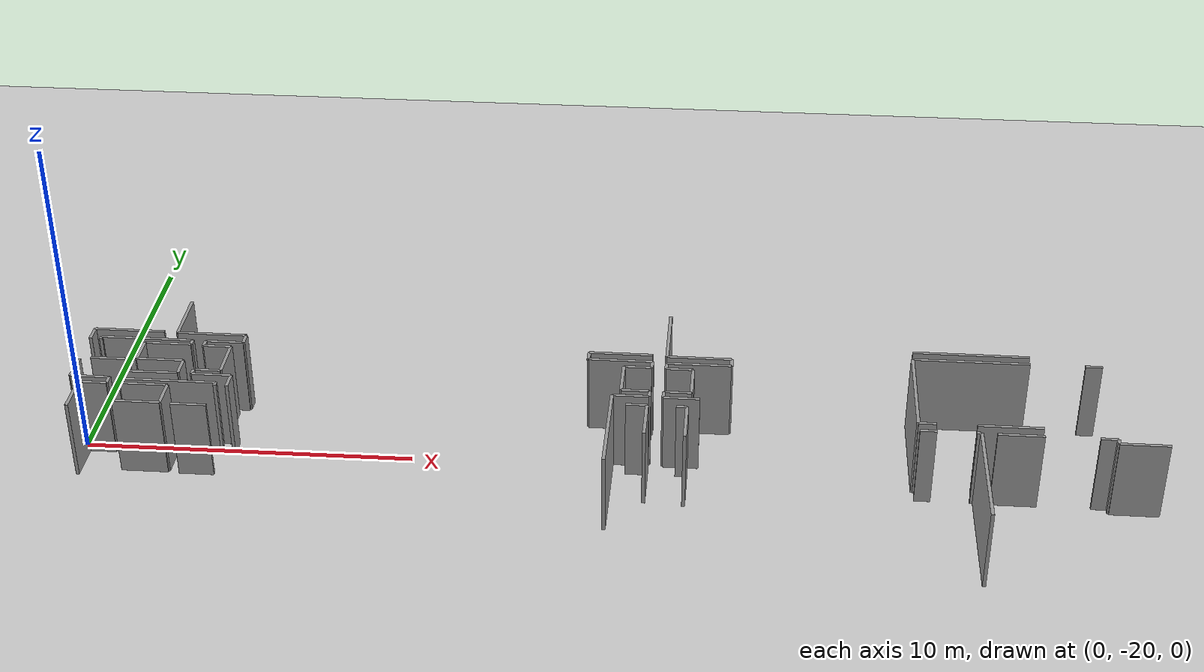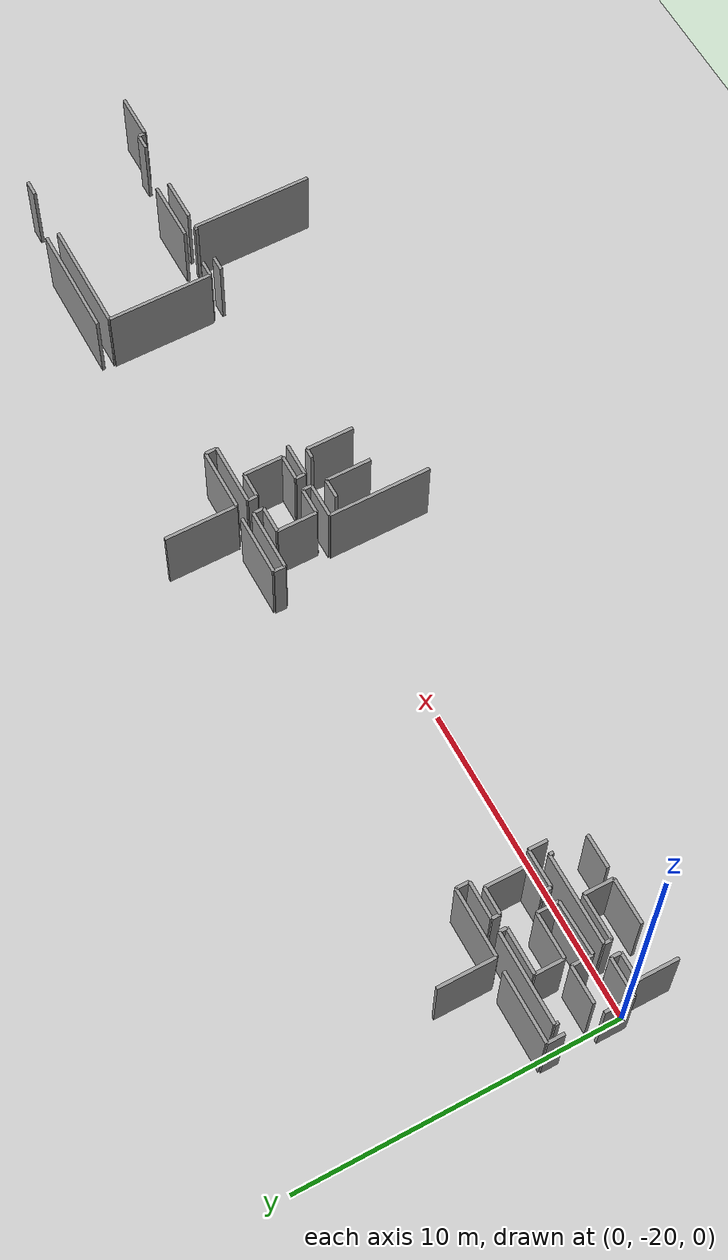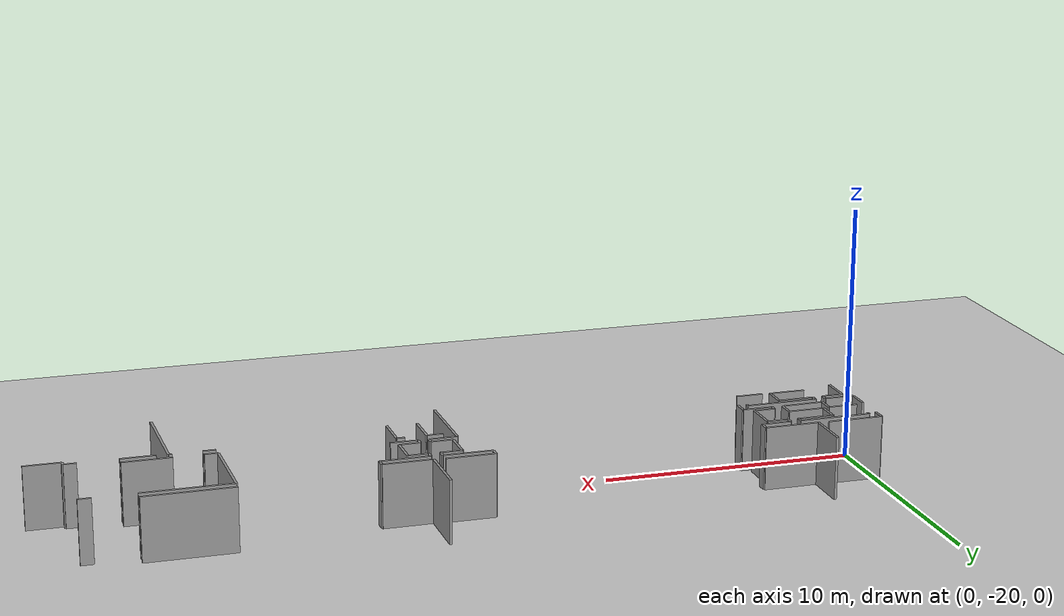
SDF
<sdf version="1.6">
 <world name="default">
  <model name="ground_plane">
   <static>1</static>
   <link name="link">
    <collision name="collision">
     <geometry><plane><normal>0 0 1</normal><size>100 100</size></plane></geometry>
     <surface><friction><ode><mu>100</mu><mu2>50</mu2></ode></friction></surface>
    </collision>
    <visual name="visual">
     <cast_shadows>0</cast_shadows>
     <geometry><plane><normal>0 0 1</normal><size>100 100</size></plane></geometry>
     <material>
      <script><uri>file://media/materials/scripts/gazebo.material</uri><name>Gazebo/Grey</name></script>
     </material>
    </visual>
   </link>
  </model>
  <model name="0510035342_A_40_1_101">
   <static>1</static>
   <link name="Wall_177">
    <collision name="Wall_177_Collision">
     <geometry><box><size>2.18657929493 0.1 2.5</size></box></geometry>
     <pose>1.09328964747 0 1.25 0 0 0</pose>
    </collision>
    <visual name="Wall_177_Visual">
     <pose>1.09328964747 0 1.25 0 0 0</pose>
     <geometry><box><size>2.18657929493 0.1 2.5</size></box></geometry>
     <material>
      <script><uri>file://media/materials/scripts/gazebo.material</uri><name>Gazebo/Grey</name></script>
      <ambient>1 1 1 1</ambient>
     </material>
    </visual>
    <pose>117.678299299 -42.6239459514 0 0 0 3.14159265359</pose>
   </link>
   <link name="Wall_178">
    <collision name="Wall_178_Collision">
     <geometry><box><size>0.537437773037 0.1 2.5</size></box></geometry>
     <pose>0.268718886518 0 1.25 0 0 0</pose>
    </collision>
    <visual name="Wall_178_Visual">
     <pose>0.268718886518 0 1.25 0 0 0</pose>
     <geometry><box><size>0.537437773037 0.1 2.5</size></box></geometry>
     <material>
      <script><uri>file://media/materials/scripts/gazebo.material</uri><name>Gazebo/Grey</name></script>
      <ambient>1 1 1 1</ambient>
     </material>
    </visual>
    <pose>115.491720004 -42.6239459514 0 0 0 -1.57079632679</pose>
   </link>
   <link name="Wall_179">
    <collision name="Wall_179_Collision">
     <geometry><box><size>0.915117342274 0.1 2.5</size></box></geometry>
     <pose>0.457558671137 0 1.25 0 0 0</pose>
    </collision>
    <visual name="Wall_179_Visual">
     <pose>0.457558671137 0 1.25 0 0 0</pose>
     <geometry><box><size>0.915117342274 0.1 2.5</size></box></geometry>
     <material>
      <script><uri>file://media/materials/scripts/gazebo.material</uri><name>Gazebo/Grey</name></script>
      <ambient>1 1 1 1</ambient>
     </material>
    </visual>
    <pose>115.491720004 -44.3368383623 0 0 0 -1.57079632679</pose>
   </link>
   <link name="Wall_180">
    <collision name="Wall_180_Collision">
     <geometry><box><size>1.18586812964 0.1 2.5</size></box></geometry>
     <pose>0.592934064818 0 1.25 0 0 0</pose>
    </collision>
    <visual name="Wall_180_Visual">
     <pose>0.592934064818 0 1.25 0 0 0</pose>
     <geometry><box><size>1.18586812964 0.1 2.5</size></box></geometry>
     <material>
      <script><uri>file://media/materials/scripts/gazebo.material</uri><name>Gazebo/Grey</name></script>
      <ambient>1 1 1 1</ambient>
     </material>
    </visual>
    <pose>115.491720004 -45.2519557046 0 0 0 0.0</pose>
   </link>
   <link name="Wall_181">
    <collision name="Wall_181_Collision">
     <geometry><box><size>0.303769176064 0.1 2.5</size></box></geometry>
     <pose>0.151884588032 0 1.25 0 0 0</pose>
    </collision>
    <visual name="Wall_181_Visual">
     <pose>0.151884588032 0 1.25 0 0 0</pose>
     <geometry><box><size>0.303769176064 0.1 2.5</size></box></geometry>
     <material>
      <script><uri>file://media/materials/scripts/gazebo.material</uri><name>Gazebo/Grey</name></script>
      <ambient>1 1 1 1</ambient>
     </material>
    </visual>
    <pose>116.677588134 -45.2519557046 0 0 0 -1.57079632679</pose>
   </link>
   <link name="Wall_182">
    <collision name="Wall_182_Collision">
     <geometry><box><size>0.845524738393 0.1 2.5</size></box></geometry>
     <pose>0.422762369196 0 1.25 0 0 0</pose>
    </collision>
    <visual name="Wall_182_Visual">
     <pose>0.422762369196 0 1.25 0 0 0</pose>
     <geometry><box><size>0.845524738393 0.1 2.5</size></box></geometry>
     <material>
      <script><uri>file://media/materials/scripts/gazebo.material</uri><name>Gazebo/Grey</name></script>
      <ambient>1 1 1 1</ambient>
     </material>
    </visual>
    <pose>116.677588134 -45.5557248806 0 0 0 3.14159265359</pose>
   </link>
   <link name="Wall_183">
    <collision name="Wall_183_Collision">
     <geometry><box><size>1.25165091944 0.1 2.5</size></box></geometry>
     <pose>0.625825459718 0 1.25 0 0 0</pose>
    </collision>
    <visual name="Wall_183_Visual">
     <pose>0.625825459718 0 1.25 0 0 0</pose>
     <geometry><box><size>1.25165091944 0.1 2.5</size></box></geometry>
     <material>
      <script><uri>file://media/materials/scripts/gazebo.material</uri><name>Gazebo/Grey</name></script>
      <ambient>1 1 1 1</ambient>
     </material>
    </visual>
    <pose>115.832063395 -45.5557248806 0 0 0 -1.57079632679</pose>
   </link>
   <link name="Wall_192">
    <collision name="Wall_192_Collision">
     <geometry><box><size>0.581377628772 0.1 2.5</size></box></geometry>
     <pose>0.290688814386 0 1.25 0 0 0</pose>
    </collision>
    <visual name="Wall_192_Visual">
     <pose>0.290688814386 0 1.25 0 0 0</pose>
     <geometry><box><size>0.581377628772 0.1 2.5</size></box></geometry>
     <material>
      <script><uri>file://media/materials/scripts/gazebo.material</uri><name>Gazebo/Grey</name></script>
      <ambient>1 1 1 1</ambient>
     </material>
    </visual>
    <pose>120.27786244 -45.4635273799 0 0 0 1.57079632679</pose>
   </link>
   <link name="Wall_193">
    <collision name="Wall_193_Collision">
     <geometry><box><size>1.19018591893 0.1 2.5</size></box></geometry>
     <pose>0.595092959464 0 1.25 0 0 0</pose>
    </collision>
    <visual name="Wall_193_Visual">
     <pose>0.595092959464 0 1.25 0 0 0</pose>
     <geometry><box><size>1.19018591893 0.1 2.5</size></box></geometry>
     <material>
      <script><uri>file://media/materials/scripts/gazebo.material</uri><name>Gazebo/Grey</name></script>
      <ambient>1 1 1 1</ambient>
     </material>
    </visual>
    <pose>120.27786244 -44.8821497511 0 0 0 3.14159265359</pose>
   </link>
   <link name="Wall_194">
    <collision name="Wall_194_Collision">
     <geometry><box><size>0.232398658945 0.1 2.5</size></box></geometry>
     <pose>0.116199329473 0 1.25 0 0 0</pose>
    </collision>
    <visual name="Wall_194_Visual">
     <pose>0.116199329473 0 1.25 0 0 0</pose>
     <geometry><box><size>0.232398658945 0.1 2.5</size></box></geometry>
     <material>
      <script><uri>file://media/materials/scripts/gazebo.material</uri><name>Gazebo/Grey</name></script>
      <ambient>1 1 1 1</ambient>
     </material>
    </visual>
    <pose>119.087676521 -44.8821497511 0 0 0 1.57079632679</pose>
   </link>
   <link name="Wall_195">
    <collision name="Wall_195_Collision">
     <geometry><box><size>0.82190389109 0.1 2.5</size></box></geometry>
     <pose>0.410951945545 0 1.25 0 0 0</pose>
    </collision>
    <visual name="Wall_195_Visual">
     <pose>0.410951945545 0 1.25 0 0 0</pose>
     <geometry><box><size>0.82190389109 0.1 2.5</size></box></geometry>
     <material>
      <script><uri>file://media/materials/scripts/gazebo.material</uri><name>Gazebo/Grey</name></script>
      <ambient>1 1 1 1</ambient>
     </material>
    </visual>
    <pose>119.087676521 -44.6497510921 0 0 0 0.0</pose>
   </link>
   <link name="Wall_196">
    <collision name="Wall_196_Collision">
     <geometry><box><size>1.32835517627 0.1 2.5</size></box></geometry>
     <pose>0.664177588134 0 1.25 0 0 0</pose>
    </collision>
    <visual name="Wall_196_Visual">
     <pose>0.664177588134 0 1.25 0 0 0</pose>
     <geometry><box><size>1.32835517627 0.1 2.5</size></box></geometry>
     <material>
      <script><uri>file://media/materials/scripts/gazebo.material</uri><name>Gazebo/Grey</name></script>
      <ambient>1 1 1 1</ambient>
     </material>
    </visual>
    <pose>119.909580412 -44.6497510921 0 0 0 1.57079632679</pose>
   </link>
   <link name="Wall_197">
    <collision name="Wall_197_Collision">
     <geometry><box><size>0.839683023468 0.1 2.5</size></box></geometry>
     <pose>0.419841511734 0 1.25 0 0 0</pose>
    </collision>
    <visual name="Wall_197_Visual">
     <pose>0.419841511734 0 1.25 0 0 0</pose>
     <geometry><box><size>0.839683023468 0.1 2.5</size></box></geometry>
     <material>
      <script><uri>file://media/materials/scripts/gazebo.material</uri><name>Gazebo/Grey</name></script>
      <ambient>1 1 1 1</ambient>
     </material>
    </visual>
    <pose>119.909580412 -43.3213959159 0 0 0 3.14159265359</pose>
   </link>
   <link name="Wall_198">
    <collision name="Wall_198_Collision">
     <geometry><box><size>0.259321345118 0.1 2.5</size></box></geometry>
     <pose>0.129660672559 0 1.25 0 0 0</pose>
    </collision>
    <visual name="Wall_198_Visual">
     <pose>0.129660672559 0 1.25 0 0 0</pose>
     <geometry><box><size>0.259321345118 0.1 2.5</size></box></geometry>
     <material>
      <script><uri>file://media/materials/scripts/gazebo.material</uri><name>Gazebo/Grey</name></script>
      <ambient>1 1 1 1</ambient>
     </material>
    </visual>
    <pose>119.069897389 -43.3213959159 0 0 0 1.57079632679</pose>
   </link>
   <link name="Wall_199">
    <collision name="Wall_199_Collision">
     <geometry><box><size>1.16961292289 0.1 2.5</size></box></geometry>
     <pose>0.584806461445 0 1.25 0 0 0</pose>
    </collision>
    <visual name="Wall_199_Visual">
     <pose>0.584806461445 0 1.25 0 0 0</pose>
     <geometry><box><size>1.16961292289 0.1 2.5</size></box></geometry>
     <material>
      <script><uri>file://media/materials/scripts/gazebo.material</uri><name>Gazebo/Grey</name></script>
      <ambient>1 1 1 1</ambient>
     </material>
    </visual>
    <pose>119.069897389 -43.0620745708 0 0 0 0.0</pose>
   </link>
   <link name="Wall_200">
    <collision name="Wall_200_Collision">
     <geometry><box><size>0.411459920756 0.1 2.5</size></box></geometry>
     <pose>0.205729960378 0 1.25 0 0 0</pose>
    </collision>
    <visual name="Wall_200_Visual">
     <pose>0.205729960378 0 1.25 0 0 0</pose>
     <geometry><box><size>0.411459920756 0.1 2.5</size></box></geometry>
     <material>
      <script><uri>file://media/materials/scripts/gazebo.material</uri><name>Gazebo/Grey</name></script>
      <ambient>1 1 1 1</ambient>
     </material>
    </visual>
    <pose>120.239510312 -43.0620745708 0 0 0 1.57079632679</pose>
   </link>
   <link name="Wall_201">
    <collision name="Wall_201_Collision">
     <geometry><box><size>2.14416336483 0.1 2.5</size></box></geometry>
     <pose>1.07208168241 0 1.25 0 0 0</pose>
    </collision>
    <visual name="Wall_201_Visual">
     <pose>1.07208168241 0 1.25 0 0 0</pose>
     <geometry><box><size>2.14416336483 0.1 2.5</size></box></geometry>
     <material>
      <script><uri>file://media/materials/scripts/gazebo.material</uri><name>Gazebo/Grey</name></script>
      <ambient>1 1 1 1</ambient>
     </material>
    </visual>
    <pose>120.239510312 -42.65061465 0 0 0 3.14159265359</pose>
   </link>
   <link name="Wall_202">
    <collision name="Wall_202_Collision">
     <geometry><box><size>1.79772427106 0.1 2.5</size></box></geometry>
     <pose>0.898862135528 0 1.25 0 0 0</pose>
    </collision>
    <visual name="Wall_202_Visual">
     <pose>0.898862135528 0 1.25 0 0 0</pose>
     <geometry><box><size>1.79772427106 0.1 2.5</size></box></geometry>
     <material>
      <script><uri>file://media/materials/scripts/gazebo.material</uri><name>Gazebo/Grey</name></script>
      <ambient>1 1 1 1</ambient>
     </material>
    </visual>
    <pose>118.095346947 -42.65061465 0 0 0 1.57079632679</pose>
   </link>
   <link name="Wall_211">
    <collision name="Wall_211_Collision">
     <geometry><box><size>1.9315757391 0.1 2.5</size></box></geometry>
     <pose>0.965787869552 0 1.25 0 0 0</pose>
    </collision>
    <visual name="Wall_211_Visual">
     <pose>0.965787869552 0 1.25 0 0 0</pose>
     <geometry><box><size>1.9315757391 0.1 2.5</size></box></geometry>
     <material>
      <script><uri>file://media/materials/scripts/gazebo.material</uri><name>Gazebo/Grey</name></script>
      <ambient>1 1 1 1</ambient>
     </material>
    </visual>
    <pose>132.808086965 -42.8118967794 0 0 0 3.14159265359</pose>
   </link>
   <link name="Wall_212">
    <collision name="Wall_212_Collision">
     <geometry><box><size>0.362948288124 0.1 2.5</size></box></geometry>
     <pose>0.181474144062 0 1.25 0 0 0</pose>
    </collision>
    <visual name="Wall_212_Visual">
     <pose>0.181474144062 0 1.25 0 0 0</pose>
     <geometry><box><size>0.362948288124 0.1 2.5</size></box></geometry>
     <material>
      <script><uri>file://media/materials/scripts/gazebo.material</uri><name>Gazebo/Grey</name></script>
      <ambient>1 1 1 1</ambient>
     </material>
    </visual>
    <pose>130.876511226 -42.8118967794 0 0 0 -1.57079632679</pose>
   </link>
   <link name="Wall_213">
    <collision name="Wall_213_Collision">
     <geometry><box><size>1.9358935284 0.1 2.5</size></box></geometry>
     <pose>0.967946764198 0 1.25 0 0 0</pose>
    </collision>
    <visual name="Wall_213_Visual">
     <pose>0.967946764198 0 1.25 0 0 0</pose>
     <geometry><box><size>1.9358935284 0.1 2.5</size></box></geometry>
     <material>
      <script><uri>file://media/materials/scripts/gazebo.material</uri><name>Gazebo/Grey</name></script>
      <ambient>1 1 1 1</ambient>
     </material>
    </visual>
    <pose>130.876511226 -43.1748450676 0 0 0 0.0</pose>
   </link>
   <link name="Wall_214">
    <collision name="Wall_214_Collision">
     <geometry><box><size>0.329167936605 0.1 2.5</size></box></geometry>
     <pose>0.164583968302 0 1.25 0 0 0</pose>
    </collision>
    <visual name="Wall_214_Visual">
     <pose>0.164583968302 0 1.25 0 0 0</pose>
     <geometry><box><size>0.329167936605 0.1 2.5</size></box></geometry>
     <material>
      <script><uri>file://media/materials/scripts/gazebo.material</uri><name>Gazebo/Grey</name></script>
      <ambient>1 1 1 1</ambient>
     </material>
    </visual>
    <pose>132.812404755 -43.1748450676 0 0 0 -1.57079632679</pose>
   </link>
   <link name="Wall_215">
    <collision name="Wall_215_Collision">
     <geometry><box><size>0.838667073047 0.1 2.5</size></box></geometry>
     <pose>0.419333536523 0 1.25 0 0 0</pose>
    </collision>
    <visual name="Wall_215_Visual">
     <pose>0.419333536523 0 1.25 0 0 0</pose>
     <geometry><box><size>0.838667073047 0.1 2.5</size></box></geometry>
     <material>
      <script><uri>file://media/materials/scripts/gazebo.material</uri><name>Gazebo/Grey</name></script>
      <ambient>1 1 1 1</ambient>
     </material>
    </visual>
    <pose>132.812404755 -43.5040130042 0 0 0 3.14159265359</pose>
   </link>
   <link name="Wall_216">
    <collision name="Wall_216_Collision">
     <geometry><box><size>1.26206441126 0.1 2.5</size></box></geometry>
     <pose>0.631032205628 0 1.25 0 0 0</pose>
    </collision>
    <visual name="Wall_216_Visual">
     <pose>0.631032205628 0 1.25 0 0 0</pose>
     <geometry><box><size>1.26206441126 0.1 2.5</size></box></geometry>
     <material>
      <script><uri>file://media/materials/scripts/gazebo.material</uri><name>Gazebo/Grey</name></script>
      <ambient>1 1 1 1</ambient>
     </material>
    </visual>
    <pose>131.973737682 -43.5040130042 0 0 0 -1.57079632679</pose>
   </link>
   <link name="Wall_217">
    <collision name="Wall_217_Collision">
     <geometry><box><size>0.85009651529 0.1 2.5</size></box></geometry>
     <pose>0.425048257645 0 1.25 0 0 0</pose>
    </collision>
    <visual name="Wall_217_Visual">
     <pose>0.425048257645 0 1.25 0 0 0</pose>
     <geometry><box><size>0.85009651529 0.1 2.5</size></box></geometry>
     <material>
      <script><uri>file://media/materials/scripts/gazebo.material</uri><name>Gazebo/Grey</name></script>
      <ambient>1 1 1 1</ambient>
     </material>
    </visual>
    <pose>131.973737682 -44.7660774154 0 0 0 0.0</pose>
   </link>
   <link name="Wall_218">
    <collision name="Wall_218_Collision">
     <geometry><box><size>0.288783907345 0.1 2.5</size></box></geometry>
     <pose>0.144391953673 0 1.25 0 0 0</pose>
    </collision>
    <visual name="Wall_218_Visual">
     <pose>0.144391953673 0 1.25 0 0 0</pose>
     <geometry><box><size>0.288783907345 0.1 2.5</size></box></geometry>
     <material>
      <script><uri>file://media/materials/scripts/gazebo.material</uri><name>Gazebo/Grey</name></script>
      <ambient>1 1 1 1</ambient>
     </material>
    </visual>
    <pose>132.823834197 -44.7660774154 0 0 0 -1.57079632679</pose>
   </link>
   <link name="Wall_219">
    <collision name="Wall_219_Collision">
     <geometry><box><size>1.09748044295 0.1 2.5</size></box></geometry>
     <pose>0.548740221477 0 1.25 0 0 0</pose>
    </collision>
    <visual name="Wall_219_Visual">
     <pose>0.548740221477 0 1.25 0 0 0</pose>
     <geometry><box><size>1.09748044295 0.1 2.5</size></box></geometry>
     <material>
      <script><uri>file://media/materials/scripts/gazebo.material</uri><name>Gazebo/Grey</name></script>
      <ambient>1 1 1 1</ambient>
     </material>
    </visual>
    <pose>132.823834197 -45.0548613228 0 0 0 3.14159265359</pose>
   </link>
   <link name="Wall_220">
    <collision name="Wall_220_Collision">
     <geometry><box><size>3.24596159707 0.1 2.5</size></box></geometry>
     <pose>1.62298079854 0 1.25 0 0 0</pose>
    </collision>
    <visual name="Wall_220_Visual">
     <pose>1.62298079854 0 1.25 0 0 0</pose>
     <geometry><box><size>3.24596159707 0.1 2.5</size></box></geometry>
     <material>
      <script><uri>file://media/materials/scripts/gazebo.material</uri><name>Gazebo/Grey</name></script>
      <ambient>1 1 1 1</ambient>
     </material>
    </visual>
    <pose>131.726353754 -45.0548613228 0 0 0 -1.57079632679</pose>
   </link>
   <link name="Wall_225">
    <collision name="Wall_225_Collision">
     <geometry><box><size>1.07589149649 0.1 2.5</size></box></geometry>
     <pose>0.537945748247 0 1.25 0 0 0</pose>
    </collision>
    <visual name="Wall_225_Visual">
     <pose>0.537945748247 0 1.25 0 0 0</pose>
     <geometry><box><size>1.07589149649 0.1 2.5</size></box></geometry>
     <material>
      <script><uri>file://media/materials/scripts/gazebo.material</uri><name>Gazebo/Grey</name></script>
      <ambient>1 1 1 1</ambient>
     </material>
    </visual>
    <pose>134.323377019 -45.0723864675 0 0 0 3.14159265359</pose>
   </link>
   <link name="Wall_226">
    <collision name="Wall_226_Collision">
     <geometry><box><size>0.296403535507 0.1 2.5</size></box></geometry>
     <pose>0.148201767754 0 1.25 0 0 0</pose>
    </collision>
    <visual name="Wall_226_Visual">
     <pose>0.148201767754 0 1.25 0 0 0</pose>
     <geometry><box><size>0.296403535507 0.1 2.5</size></box></geometry>
     <material>
      <script><uri>file://media/materials/scripts/gazebo.material</uri><name>Gazebo/Grey</name></script>
      <ambient>1 1 1 1</ambient>
     </material>
    </visual>
    <pose>133.247485523 -45.0723864675 0 0 0 1.57079632679</pose>
   </link>
   <link name="Wall_227">
    <collision name="Wall_227_Collision">
     <geometry><box><size>0.81250634969 0.1 2.5</size></box></geometry>
     <pose>0.406253174845 0 1.25 0 0 0</pose>
    </collision>
    <visual name="Wall_227_Visual">
     <pose>0.406253174845 0 1.25 0 0 0</pose>
     <geometry><box><size>0.81250634969 0.1 2.5</size></box></geometry>
     <material>
      <script><uri>file://media/materials/scripts/gazebo.material</uri><name>Gazebo/Grey</name></script>
      <ambient>1 1 1 1</ambient>
     </material>
    </visual>
    <pose>133.247485523 -44.775982932 0 0 0 0.0</pose>
   </link>
   <link name="Wall_228">
    <collision name="Wall_228_Collision">
     <geometry><box><size>1.24784110535 0.1 2.5</size></box></geometry>
     <pose>0.623920552677 0 1.25 0 0 0</pose>
    </collision>
    <visual name="Wall_228_Visual">
     <pose>0.623920552677 0 1.25 0 0 0</pose>
     <geometry><box><size>1.24784110535 0.1 2.5</size></box></geometry>
     <material>
      <script><uri>file://media/materials/scripts/gazebo.material</uri><name>Gazebo/Grey</name></script>
      <ambient>1 1 1 1</ambient>
     </material>
    </visual>
    <pose>134.059991872 -44.775982932 0 0 0 1.57079632679</pose>
   </link>
   <link name="Wall_229">
    <collision name="Wall_229_Collision">
     <geometry><box><size>0.80590267195 0.1 2.5</size></box></geometry>
     <pose>0.402951335975 0 1.25 0 0 0</pose>
    </collision>
    <visual name="Wall_229_Visual">
     <pose>0.402951335975 0 1.25 0 0 0</pose>
     <geometry><box><size>0.80590267195 0.1 2.5</size></box></geometry>
     <material>
      <script><uri>file://media/materials/scripts/gazebo.material</uri><name>Gazebo/Grey</name></script>
      <ambient>1 1 1 1</ambient>
     </material>
    </visual>
    <pose>134.059991872 -43.5281418267 0 0 0 3.14159265359</pose>
   </link>
   <link name="Wall_230">
    <collision name="Wall_230_Collision">
     <geometry><box><size>0.296149547902 0.1 2.5</size></box></geometry>
     <pose>0.148074773951 0 1.25 0 0 0</pose>
    </collision>
    <visual name="Wall_230_Visual">
     <pose>0.148074773951 0 1.25 0 0 0</pose>
     <geometry><box><size>0.296149547902 0.1 2.5</size></box></geometry>
     <material>
      <script><uri>file://media/materials/scripts/gazebo.material</uri><name>Gazebo/Grey</name></script>
      <ambient>1 1 1 1</ambient>
     </material>
    </visual>
    <pose>133.2540892 -43.5281418267 0 0 0 1.57079632679</pose>
   </link>
   <link name="Wall_231">
    <collision name="Wall_231_Collision">
     <geometry><box><size>1.94783094585 0.1 2.5</size></box></geometry>
     <pose>0.973915472925 0 1.25 0 0 0</pose>
    </collision>
    <visual name="Wall_231_Visual">
     <pose>0.973915472925 0 1.25 0 0 0</pose>
     <geometry><box><size>1.94783094585 0.1 2.5</size></box></geometry>
     <material>
      <script><uri>file://media/materials/scripts/gazebo.material</uri><name>Gazebo/Grey</name></script>
      <ambient>1 1 1 1</ambient>
     </material>
    </visual>
    <pose>133.2540892 -43.2319922788 0 0 0 0.0</pose>
   </link>
   <link name="Wall_232">
    <collision name="Wall_232_Collision">
     <geometry><box><size>0.362694300518 0.1 2.5</size></box></geometry>
     <pose>0.181347150259 0 1.25 0 0 0</pose>
    </collision>
    <visual name="Wall_232_Visual">
     <pose>0.181347150259 0 1.25 0 0 0</pose>
     <geometry><box><size>0.362694300518 0.1 2.5</size></box></geometry>
     <material>
      <script><uri>file://media/materials/scripts/gazebo.material</uri><name>Gazebo/Grey</name></script>
      <ambient>1 1 1 1</ambient>
     </material>
    </visual>
    <pose>135.201920146 -43.2319922788 0 0 0 1.57079632679</pose>
   </link>
   <link name="Wall_233">
    <collision name="Wall_233_Collision">
     <geometry><box><size>1.95748247486 0.1 2.5</size></box></geometry>
     <pose>0.978741237428 0 1.25 0 0 0</pose>
    </collision>
    <visual name="Wall_233_Visual">
     <pose>0.978741237428 0 1.25 0 0 0</pose>
     <geometry><box><size>1.95748247486 0.1 2.5</size></box></geometry>
     <material>
      <script><uri>file://media/materials/scripts/gazebo.material</uri><name>Gazebo/Grey</name></script>
      <ambient>1 1 1 1</ambient>
     </material>
    </visual>
    <pose>135.201920146 -42.8692979783 0 0 0 3.14159265359</pose>
   </link>
   <link name="Wall_234">
    <collision name="Wall_234_Collision">
     <geometry><box><size>2.2836025602 0.1 2.5</size></box></geometry>
     <pose>1.1418012801 0 1.25 0 0 0</pose>
    </collision>
    <visual name="Wall_234_Visual">
     <pose>1.1418012801 0 1.25 0 0 0</pose>
     <geometry><box><size>2.2836025602 0.1 2.5</size></box></geometry>
     <material>
      <script><uri>file://media/materials/scripts/gazebo.material</uri><name>Gazebo/Grey</name></script>
      <ambient>1 1 1 1</ambient>
     </material>
    </visual>
    <pose>133.244437671 -42.8692979783 0 0 0 1.57079632679</pose>
   </link>
   <link name="Wall_240">
    <collision name="Wall_240_Collision">
     <geometry><box><size>0.65884384842 0.1 2.5</size></box></geometry>
     <pose>0.32942192421 0 1.25 0 0 0</pose>
    </collision>
    <visual name="Wall_240_Visual">
     <pose>0.32942192421 0 1.25 0 0 0</pose>
     <geometry><box><size>0.65884384842 0.1 2.5</size></box></geometry>
     <material>
      <script><uri>file://media/materials/scripts/gazebo.material</uri><name>Gazebo/Grey</name></script>
      <ambient>1 1 1 1</ambient>
     </material>
    </visual>
    <pose>116.974245657 -44.8935791933 0 0 0 1.57079632679</pose>
   </link>
   <link name="Wall_241">
    <collision name="Wall_241_Collision">
     <geometry><box><size>1.15538961699 0.1 2.5</size></box></geometry>
     <pose>0.577694808493 0 1.25 0 0 0</pose>
    </collision>
    <visual name="Wall_241_Visual">
     <pose>0.577694808493 0 1.25 0 0 0</pose>
     <geometry><box><size>1.15538961699 0.1 2.5</size></box></geometry>
     <material>
      <script><uri>file://media/materials/scripts/gazebo.material</uri><name>Gazebo/Grey</name></script>
      <ambient>1 1 1 1</ambient>
     </material>
    </visual>
    <pose>116.974245657 -44.2347353449 0 0 0 3.14159265359</pose>
   </link>
   <link name="Wall_242">
    <collision name="Wall_242_Collision">
     <geometry><box><size>0.121660062989 0.1 2.5</size></box></geometry>
     <pose>0.0608300314945 0 1.25 0 0 0</pose>
    </collision>
    <visual name="Wall_242_Visual">
     <pose>0.0608300314945 0 1.25 0 0 0</pose>
     <geometry><box><size>0.121660062989 0.1 2.5</size></box></geometry>
     <material>
      <script><uri>file://media/materials/scripts/gazebo.material</uri><name>Gazebo/Grey</name></script>
      <ambient>1 1 1 1</ambient>
     </material>
    </visual>
    <pose>115.81885604 -43.1738291171 0 0 0 1.57079632679</pose>
   </link>
   <link name="Wall_243">
    <collision name="Wall_243_Collision">
     <geometry><box><size>2.84618510617 0.1 2.5</size></box></geometry>
     <pose>1.42309255308 0 1.25 0 0 0</pose>
    </collision>
    <visual name="Wall_243_Visual">
     <pose>1.42309255308 0 1.25 0 0 0</pose>
     <geometry><box><size>2.84618510617 0.1 2.5</size></box></geometry>
     <material>
      <script><uri>file://media/materials/scripts/gazebo.material</uri><name>Gazebo/Grey</name></script>
      <ambient>1 1 1 1</ambient>
     </material>
    </visual>
    <pose>115.81885604 -43.0521690542 0 0 0 0.0</pose>
   </link>
   <link name="Wall_244">
    <collision name="Wall_244_Collision">
     <geometry><box><size>0.230366758102 0.1 2.5</size></box></geometry>
     <pose>0.115183379051 0 1.25 0 0 0</pose>
    </collision>
    <visual name="Wall_244_Visual">
     <pose>0.115183379051 0 1.25 0 0 0</pose>
     <geometry><box><size>0.230366758102 0.1 2.5</size></box></geometry>
     <material>
      <script><uri>file://media/materials/scripts/gazebo.material</uri><name>Gazebo/Grey</name></script>
      <ambient>1 1 1 1</ambient>
     </material>
    </visual>
    <pose>118.665041146 -43.0521690542 0 0 0 -1.57079632679</pose>
   </link>
   <link name="Wall_245">
    <collision name="Wall_245_Collision">
     <geometry><box><size>1.43833180941 0.1 2.5</size></box></geometry>
     <pose>0.719165904704 0 1.25 0 0 0</pose>
    </collision>
    <visual name="Wall_245_Visual">
     <pose>0.719165904704 0 1.25 0 0 0</pose>
     <geometry><box><size>1.43833180941 0.1 2.5</size></box></geometry>
     <material>
      <script><uri>file://media/materials/scripts/gazebo.material</uri><name>Gazebo/Grey</name></script>
      <ambient>1 1 1 1</ambient>
     </material>
    </visual>
    <pose>118.665041146 -43.2825358123 0 0 0 3.14159265359</pose>
   </link>
   <link name="Wall_246">
    <collision name="Wall_246_Collision">
     <geometry><box><size>0.900640048766 0.1 2.5</size></box></geometry>
     <pose>0.450320024383 0 1.25 0 0 0</pose>
    </collision>
    <visual name="Wall_246_Visual">
     <pose>0.450320024383 0 1.25 0 0 0</pose>
     <geometry><box><size>0.900640048766 0.1 2.5</size></box></geometry>
     <material>
      <script><uri>file://media/materials/scripts/gazebo.material</uri><name>Gazebo/Grey</name></script>
      <ambient>1 1 1 1</ambient>
     </material>
    </visual>
    <pose>117.226709337 -43.2825358123 0 0 0 -1.57079632679</pose>
   </link>
   <link name="Wall_247">
    <collision name="Wall_247_Collision">
     <geometry><box><size>1.42741034238 0.1 2.5</size></box></geometry>
     <pose>0.713705171188 0 1.25 0 0 0</pose>
    </collision>
    <visual name="Wall_247_Visual">
     <pose>0.713705171188 0 1.25 0 0 0</pose>
     <geometry><box><size>1.42741034238 0.1 2.5</size></box></geometry>
     <material>
      <script><uri>file://media/materials/scripts/gazebo.material</uri><name>Gazebo/Grey</name></script>
      <ambient>1 1 1 1</ambient>
     </material>
    </visual>
    <pose>117.226709337 -44.183175861 0 0 0 0.0</pose>
   </link>
   <link name="Wall_248">
    <collision name="Wall_248_Collision">
     <geometry><box><size>0.674083104744 0.1 2.5</size></box></geometry>
     <pose>0.337041552372 0 1.25 0 0 0</pose>
    </collision>
    <visual name="Wall_248_Visual">
     <pose>0.337041552372 0 1.25 0 0 0</pose>
     <geometry><box><size>0.674083104744 0.1 2.5</size></box></geometry>
     <material>
      <script><uri>file://media/materials/scripts/gazebo.material</uri><name>Gazebo/Grey</name></script>
      <ambient>1 1 1 1</ambient>
     </material>
    </visual>
    <pose>118.654119679 -44.183175861 0 0 0 -1.57079632679</pose>
   </link>
   <link name="Wall_249">
    <collision name="Wall_249_Collision">
     <geometry><box><size>1.68026661254 0.1 2.5</size></box></geometry>
     <pose>0.84013330627 0 1.25 0 0 0</pose>
    </collision>
    <visual name="Wall_249_Visual">
     <pose>0.84013330627 0 1.25 0 0 0</pose>
     <geometry><box><size>1.68026661254 0.1 2.5</size></box></geometry>
     <material>
      <script><uri>file://media/materials/scripts/gazebo.material</uri><name>Gazebo/Grey</name></script>
      <ambient>1 1 1 1</ambient>
     </material>
    </visual>
    <pose>118.654119679 -44.8572589658 0 0 0 -3.11997521724</pose>
   </link>
   <link name="Wall_251">
    <collision name="Wall_251_Collision">
     <geometry><box><size>1.42715635477 0.1 2.5</size></box></geometry>
     <pose>0.713578177385 0 1.25 0 0 0</pose>
    </collision>
    <visual name="Wall_251_Visual">
     <pose>0.713578177385 0 1.25 0 0 0</pose>
     <geometry><box><size>1.42715635477 0.1 2.5</size></box></geometry>
     <material>
      <script><uri>file://media/materials/scripts/gazebo.material</uri><name>Gazebo/Grey</name></script>
      <ambient>1 1 1 1</ambient>
     </material>
    </visual>
    <pose>117.086762166 -46.455348979 0 0 0 0.0</pose>
   </link>
   <link name="Wall_252">
    <collision name="Wall_252_Collision">
     <geometry><box><size>0.924006908463 0.1 2.5</size></box></geometry>
     <pose>0.462003454231 0 1.25 0 0 0</pose>
    </collision>
    <visual name="Wall_252_Visual">
     <pose>0.462003454231 0 1.25 0 0 0</pose>
     <geometry><box><size>0.924006908463 0.1 2.5</size></box></geometry>
     <material>
      <script><uri>file://media/materials/scripts/gazebo.material</uri><name>Gazebo/Grey</name></script>
      <ambient>1 1 1 1</ambient>
     </material>
    </visual>
    <pose>118.513918521 -46.455348979 0 0 0 1.57079632679</pose>
   </link>
   <link name="Wall_253">
    <collision name="Wall_253_Collision">
     <geometry><box><size>1.42233059027 0.1 2.5</size></box></geometry>
     <pose>0.711165295134 0 1.25 0 0 0</pose>
    </collision>
    <visual name="Wall_253_Visual">
     <pose>0.711165295134 0 1.25 0 0 0</pose>
     <geometry><box><size>1.42233059027 0.1 2.5</size></box></geometry>
     <material>
      <script><uri>file://media/materials/scripts/gazebo.material</uri><name>Gazebo/Grey</name></script>
      <ambient>1 1 1 1</ambient>
     </material>
    </visual>
    <pose>118.513918521 -45.5313420705 0 0 0 3.14159265359</pose>
   </link>
   <link name="Wall_254">
    <collision name="Wall_254_Collision">
     <geometry><box><size>0.231128720918 0.1 2.5</size></box></geometry>
     <pose>0.115564360459 0 1.25 0 0 0</pose>
    </collision>
    <visual name="Wall_254_Visual">
     <pose>0.115564360459 0 1.25 0 0 0</pose>
     <geometry><box><size>0.231128720918 0.1 2.5</size></box></geometry>
     <material>
      <script><uri>file://media/materials/scripts/gazebo.material</uri><name>Gazebo/Grey</name></script>
      <ambient>1 1 1 1</ambient>
     </material>
    </visual>
    <pose>117.091587931 -45.5313420705 0 0 0 1.57079632679</pose>
   </link>
   <link name="Wall_255">
    <collision name="Wall_255_Collision">
     <geometry><box><size>2.81596058112 0.1 2.5</size></box></geometry>
     <pose>1.40798029056 0 1.25 0 0 0</pose>
    </collision>
    <visual name="Wall_255_Visual">
     <pose>1.40798029056 0 1.25 0 0 0</pose>
     <geometry><box><size>2.81596058112 0.1 2.5</size></box></geometry>
     <material>
      <script><uri>file://media/materials/scripts/gazebo.material</uri><name>Gazebo/Grey</name></script>
      <ambient>1 1 1 1</ambient>
     </material>
    </visual>
    <pose>117.091587931 -45.3002133496 0 0 0 0.0</pose>
   </link>
   <link name="Wall_256">
    <collision name="Wall_256_Collision">
     <geometry><box><size>0.130041653967 0.1 2.5</size></box></geometry>
     <pose>0.0650208269836 0 1.25 0 0 0</pose>
    </collision>
    <visual name="Wall_256_Visual">
     <pose>0.0650208269836 0 1.25 0 0 0</pose>
     <geometry><box><size>0.130041653967 0.1 2.5</size></box></geometry>
     <material>
      <script><uri>file://media/materials/scripts/gazebo.material</uri><name>Gazebo/Grey</name></script>
      <ambient>1 1 1 1</ambient>
     </material>
    </visual>
    <pose>119.907548512 -45.3002133496 0 0 0 -1.57079632679</pose>
   </link>
   <link name="Wall_257">
    <collision name="Wall_257_Collision">
     <geometry><box><size>1.06166819059 0.1 2.5</size></box></geometry>
     <pose>0.530834095296 0 1.25 0 0 0</pose>
    </collision>
    <visual name="Wall_257_Visual">
     <pose>0.530834095296 0 1.25 0 0 0</pose>
     <geometry><box><size>1.06166819059 0.1 2.5</size></box></geometry>
     <material>
      <script><uri>file://media/materials/scripts/gazebo.material</uri><name>Gazebo/Grey</name></script>
      <ambient>1 1 1 1</ambient>
     </material>
    </visual>
    <pose>119.907548512 -46.4860814792 0 0 0 3.14159265359</pose>
   </link>
   <link name="Wall_289">
    <collision name="Wall_289_Collision">
     <geometry><box><size>0.631413187036 0.1 2.5</size></box></geometry>
     <pose>0.315706593518 0 1.25 0 0 0</pose>
    </collision>
    <visual name="Wall_289_Visual">
     <pose>0.315706593518 0 1.25 0 0 0</pose>
     <geometry><box><size>0.631413187036 0.1 2.5</size></box></geometry>
     <material>
      <script><uri>file://media/materials/scripts/gazebo.material</uri><name>Gazebo/Grey</name></script>
      <ambient>1 1 1 1</ambient>
     </material>
    </visual>
    <pose>132.155338819 -45.5100071117 0 0 0 0.0</pose>
   </link>
   <link name="Wall_290">
    <collision name="Wall_290_Collision">
     <geometry><box><size>1.43960174743 0.1 2.5</size></box></geometry>
     <pose>0.719800873717 0 1.25 0 0 0</pose>
    </collision>
    <visual name="Wall_290_Visual">
     <pose>0.719800873717 0 1.25 0 0 0</pose>
     <geometry><box><size>1.43960174743 0.1 2.5</size></box></geometry>
     <material>
      <script><uri>file://media/materials/scripts/gazebo.material</uri><name>Gazebo/Grey</name></script>
      <ambient>1 1 1 1</ambient>
     </material>
    </visual>
    <pose>132.786752007 -45.5100071117 0 0 0 -1.57079632679</pose>
   </link>
   <link name="Wall_293">
    <collision name="Wall_293_Collision">
     <geometry><box><size>0.315706593518 0.1 2.5</size></box></geometry>
     <pose>0.157853296759 0 1.25 0 0 0</pose>
    </collision>
    <visual name="Wall_293_Visual">
     <pose>0.157853296759 0 1.25 0 0 0</pose>
     <geometry><box><size>0.315706593518 0.1 2.5</size></box></geometry>
     <material>
      <script><uri>file://media/materials/scripts/gazebo.material</uri><name>Gazebo/Grey</name></script>
      <ambient>1 1 1 1</ambient>
     </material>
    </visual>
    <pose>133.6454841 -45.5100071117 0 0 0 0.0</pose>
   </link>
   <link name="Wall_294">
    <collision name="Wall_294_Collision">
     <geometry><box><size>1.50284466118 0.1 2.5</size></box></geometry>
     <pose>0.75142233059 0 1.25 0 0 0</pose>
    </collision>
    <visual name="Wall_294_Visual">
     <pose>0.75142233059 0 1.25 0 0 0</pose>
     <geometry><box><size>1.50284466118 0.1 2.5</size></box></geometry>
     <material>
      <script><uri>file://media/materials/scripts/gazebo.material</uri><name>Gazebo/Grey</name></script>
      <ambient>1 1 1 1</ambient>
     </material>
    </visual>
    <pose>133.961190694 -45.5100071117 0 0 0 -1.57079632679</pose>
   </link>
   <link name="Wall_425">
    <collision name="Wall_425_Collision">
     <geometry><box><size>3.52128820088 0.1 2.5</size></box></geometry>
     <pose>1.76064410044 0 1.25 0 0 0</pose>
    </collision>
    <visual name="Wall_425_Visual">
     <pose>1.76064410044 0 1.25 0 0 0</pose>
     <geometry><box><size>3.52128820088 0.1 2.5</size></box></geometry>
     <material>
      <script><uri>file://media/materials/scripts/gazebo.material</uri><name>Gazebo/Grey</name></script>
      <ambient>1 1 1 1</ambient>
     </material>
    </visual>
    <pose>144.202224931 -42.0768566494 0 0 0 3.14007794038</pose>
   </link>
   <link name="Wall_431">
    <collision name="Wall_431_Collision">
     <geometry><box><size>3.35873209387 0.1 2.5</size></box></geometry>
     <pose>1.67936604694 0 1.25 0 0 0</pose>
    </collision>
    <visual name="Wall_431_Visual">
     <pose>1.67936604694 0 1.25 0 0 0</pose>
     <geometry><box><size>3.35873209387 0.1 2.5</size></box></geometry>
     <material>
      <script><uri>file://media/materials/scripts/gazebo.material</uri><name>Gazebo/Grey</name></script>
      <ambient>1 1 1 1</ambient>
     </material>
    </visual>
    <pose>140.666463477 -45.8130143249 0 0 0 1.57079632679</pose>
   </link>
   <link name="Wall_432">
    <collision name="Wall_432_Collision">
     <geometry><box><size>3.52306207457 0.1 2.5</size></box></geometry>
     <pose>1.76153103729 0 1.25 0 0 0</pose>
    </collision>
    <visual name="Wall_432_Visual">
     <pose>1.76153103729 0 1.25 0 0 0</pose>
     <geometry><box><size>3.52306207457 0.1 2.5</size></box></geometry>
     <material>
      <script><uri>file://media/materials/scripts/gazebo.material</uri><name>Gazebo/Grey</name></script>
      <ambient>1 1 1 1</ambient>
     </material>
    </visual>
    <pose>140.666463477 -42.454282231 0 0 0 0.0</pose>
   </link>
   <link name="Wall_433">
    <collision name="Wall_433_Collision">
     <geometry><box><size>0.506451285177 0.1 2.5</size></box></geometry>
     <pose>0.253225642589 0 1.25 0 0 0</pose>
    </collision>
    <visual name="Wall_433_Visual">
     <pose>0.253225642589 0 1.25 0 0 0</pose>
     <geometry><box><size>0.506451285177 0.1 2.5</size></box></geometry>
     <material>
      <script><uri>file://media/materials/scripts/gazebo.material</uri><name>Gazebo/Grey</name></script>
      <ambient>1 1 1 1</ambient>
     </material>
    </visual>
    <pose>145.83790511 -42.454282231 0 0 0 0.0</pose>
   </link>
   <link name="Wall_436">
    <collision name="Wall_436_Collision">
     <geometry><box><size>1.90973280504 0.1 2.5</size></box></geometry>
     <pose>0.95486640252 0 1.25 0 0 0</pose>
    </collision>
    <visual name="Wall_436_Visual">
     <pose>0.95486640252 0 1.25 0 0 0</pose>
     <geometry><box><size>1.90973280504 0.1 2.5</size></box></geometry>
     <material>
      <script><uri>file://media/materials/scripts/gazebo.material</uri><name>Gazebo/Grey</name></script>
      <ambient>1 1 1 1</ambient>
     </material>
    </visual>
    <pose>144.272833486 -45.818094077 0 0 0 3.14159265359</pose>
   </link>
   <link name="Wall_437">
    <collision name="Wall_437_Collision">
     <geometry><box><size>0.523493101185 0.1 2.5</size></box></geometry>
     <pose>0.261746550593 0 1.25 0 0 0</pose>
    </collision>
    <visual name="Wall_437_Visual">
     <pose>0.261746550593 0 1.25 0 0 0</pose>
     <geometry><box><size>0.523493101185 0.1 2.5</size></box></geometry>
     <material>
      <script><uri>file://media/materials/scripts/gazebo.material</uri><name>Gazebo/Grey</name></script>
      <ambient>1 1 1 1</ambient>
     </material>
    </visual>
    <pose>141.189931931 -45.818094077 0 0 0 3.131888931</pose>
   </link>
   <link name="Wall_443">
    <collision name="Wall_443_Collision">
     <geometry><box><size>0.487148227167 0.1 2.5</size></box></geometry>
     <pose>0.243574113583 0 1.25 0 0 0</pose>
    </collision>
    <visual name="Wall_443_Visual">
     <pose>0.243574113583 0 1.25 0 0 0</pose>
     <geometry><box><size>0.487148227167 0.1 2.5</size></box></geometry>
     <material>
      <script><uri>file://media/materials/scripts/gazebo.material</uri><name>Gazebo/Grey</name></script>
      <ambient>1 1 1 1</ambient>
     </material>
    </visual>
    <pose>140.692116225 -46.1919638322 0 0 0 0.0</pose>
   </link>
   <link name="Wall_444">
    <collision name="Wall_444_Collision">
     <geometry><box><size>0.130041653967 0.1 2.5</size></box></geometry>
     <pose>0.0650208269837 0 1.25 0 0 0</pose>
    </collision>
    <visual name="Wall_444_Visual">
     <pose>0.0650208269837 0 1.25 0 0 0</pose>
     <geometry><box><size>0.130041653967 0.1 2.5</size></box></geometry>
     <material>
      <script><uri>file://media/materials/scripts/gazebo.material</uri><name>Gazebo/Grey</name></script>
      <ambient>1 1 1 1</ambient>
     </material>
    </visual>
    <pose>142.325256527 -46.1919638322 0 0 0 0.0</pose>
   </link>
   <link name="Wall_445">
    <collision name="Wall_445_Collision">
     <geometry><box><size>3.85756375089 0.1 2.5</size></box></geometry>
     <pose>1.92878187544 0 1.25 0 0 0</pose>
    </collision>
    <visual name="Wall_445_Visual">
     <pose>1.92878187544 0 1.25 0 0 0</pose>
     <geometry><box><size>3.85756375089 0.1 2.5</size></box></geometry>
     <material>
      <script><uri>file://media/materials/scripts/gazebo.material</uri><name>Gazebo/Grey</name></script>
      <ambient>1 1 1 1</ambient>
     </material>
    </visual>
    <pose>142.455298181 -46.1919638322 0 0 0 -1.57079632679</pose>
   </link>
   <link name="Wall_456">
    <collision name="Wall_456_Collision">
     <geometry><box><size>1.35730976328 0.1 2.5</size></box></geometry>
     <pose>0.678654881642 0 1.25 0 0 0</pose>
    </collision>
    <visual name="Wall_456_Visual">
     <pose>0.678654881642 0 1.25 0 0 0</pose>
     <geometry><box><size>1.35730976328 0.1 2.5</size></box></geometry>
     <material>
      <script><uri>file://media/materials/scripts/gazebo.material</uri><name>Gazebo/Grey</name></script>
      <ambient>1 1 1 1</ambient>
     </material>
    </visual>
    <pose>142.902824342 -46.2171086051 0 0 0 0.0</pose>
   </link>
   <link name="Wall_457">
    <collision name="Wall_457_Collision">
     <geometry><box><size>0.496545768566 0.1 2.5</size></box></geometry>
     <pose>0.248272884283 0 1.25 0 0 0</pose>
    </collision>
    <visual name="Wall_457_Visual">
     <pose>0.248272884283 0 1.25 0 0 0</pose>
     <geometry><box><size>0.496545768566 0.1 2.5</size></box></geometry>
     <material>
      <script><uri>file://media/materials/scripts/gazebo.material</uri><name>Gazebo/Grey</name></script>
      <ambient>1 1 1 1</ambient>
     </material>
    </visual>
    <pose>145.829269532 -46.2171086051 0 0 0 0.0</pose>
   </link>
   <link name="Wall_458">
    <collision name="Wall_458_Collision">
     <geometry><box><size>0.213603576145 0.1 2.5</size></box></geometry>
     <pose>0.106801788073 0 1.25 0 0 0</pose>
    </collision>
    <visual name="Wall_458_Visual">
     <pose>0.106801788073 0 1.25 0 0 0</pose>
     <geometry><box><size>0.213603576145 0.1 2.5</size></box></geometry>
     <material>
      <script><uri>file://media/materials/scripts/gazebo.material</uri><name>Gazebo/Grey</name></script>
      <ambient>1 1 1 1</ambient>
     </material>
    </visual>
    <pose>146.3258153 -46.2171086051 0 0 0 -1.57079632679</pose>
   </link>
   <link name="Wall_459">
    <collision name="Wall_459_Collision">
     <geometry><box><size>1.46068271868 0.1 2.5</size></box></geometry>
     <pose>0.730341359342 0 1.25 0 0 0</pose>
    </collision>
    <visual name="Wall_459_Visual">
     <pose>0.730341359342 0 1.25 0 0 0</pose>
     <geometry><box><size>1.46068271868 0.1 2.5</size></box></geometry>
     <material>
      <script><uri>file://media/materials/scripts/gazebo.material</uri><name>Gazebo/Grey</name></script>
      <ambient>1 1 1 1</ambient>
     </material>
    </visual>
    <pose>146.3258153 -46.4307121812 0 0 0 0.0</pose>
   </link>
   <pose>-115.7 25.291537133 0 0 0 0</pose>
  </model>
 </world>
</sdf>
